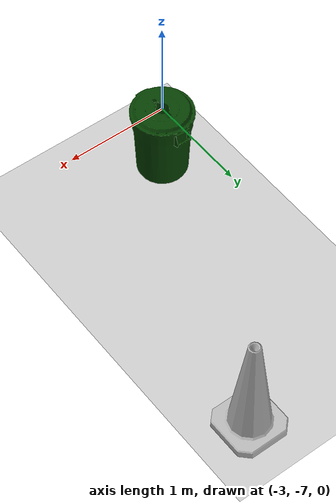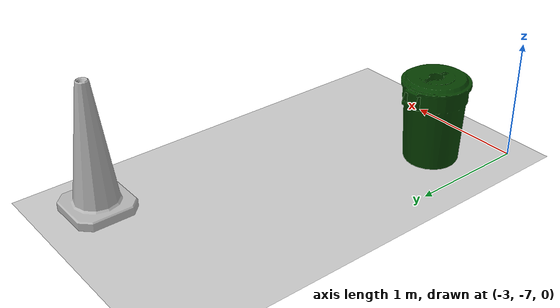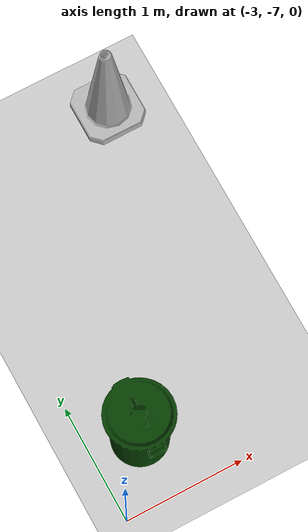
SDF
<sdf version="1.6">
 <world name="default">
  <model name="ground_plane">
   <static>1</static>
   <link name="link">
    <collision name="collision">
     <geometry><plane><normal>0 0 1</normal><size>100 100</size></plane></geometry>
     <surface>
      <contact><collide_bitmask>65535</collide_bitmask></contact>
      <friction><ode><mu>100</mu><mu2>50</mu2></ode></friction>
     </surface>
    </collision>
    <visual name="visual">
     <cast_shadows>0</cast_shadows>
     <geometry><plane><normal>0 0 1</normal><size>100 100</size></plane></geometry>
     <material>
      <script><uri>file://media/materials/scripts/gazebo.material</uri><name>Gazebo/Grey</name></script>
     </material>
    </visual>
   </link>
  </model>
  <model name="first_2015_trash_can_14">
   <link name="link">
    <inertial>
     <pose>0 0 0.3683 0 -0 0</pose>
     <mass>4.83076</mass>
     <inertia>
      <ixx>0.281534</ixx>
      <ixy>0</ixy>
      <ixz>0</ixz>
      <iyy>0.281534</iyy>
      <iyz>0</iyz>
      <izz>0.126223</izz>
     </inertia>
    </inertial>
    <visual name="visual">
     <geometry><mesh><uri>model://first_2015_trash_can/meshes/trash_can.dae</uri></mesh></geometry>
    </visual>
    <collision name="collision">
     <geometry><mesh><uri>model://first_2015_trash_can/meshes/trash_can.dae</uri></mesh></geometry>
    </collision>
   </link>
   <pose>-2.60218 -6.47853 -3e-06 3e-06 6e-06 -0.000533</pose>
  </model>
  <model name="Construction Cone_19">
   <link name="link">
    <collision name="collision">
     <geometry>
      <mesh><scale>10 10 10</scale><uri>model://construction_cone/meshes/construction_cone.dae</uri></mesh>
     </geometry>
    </collision>
    <visual name="visual">
     <geometry>
      <mesh><scale>10 10 10</scale><uri>model://construction_cone/meshes/construction_cone.dae</uri></mesh>
     </geometry>
    </visual>
    <inertial>
     <inertia><ixx>1</ixx><ixy>0</ixy><ixz>0</ixz><iyy>1</iyy><iyz>0</iyz><izz>1</izz></inertia>
     <mass>1</mass>
    </inertial>
   </link>
   <pose>-1.54105 -3.96236 -0 0 -0 0</pose>
  </model>
 </world>
</sdf>
